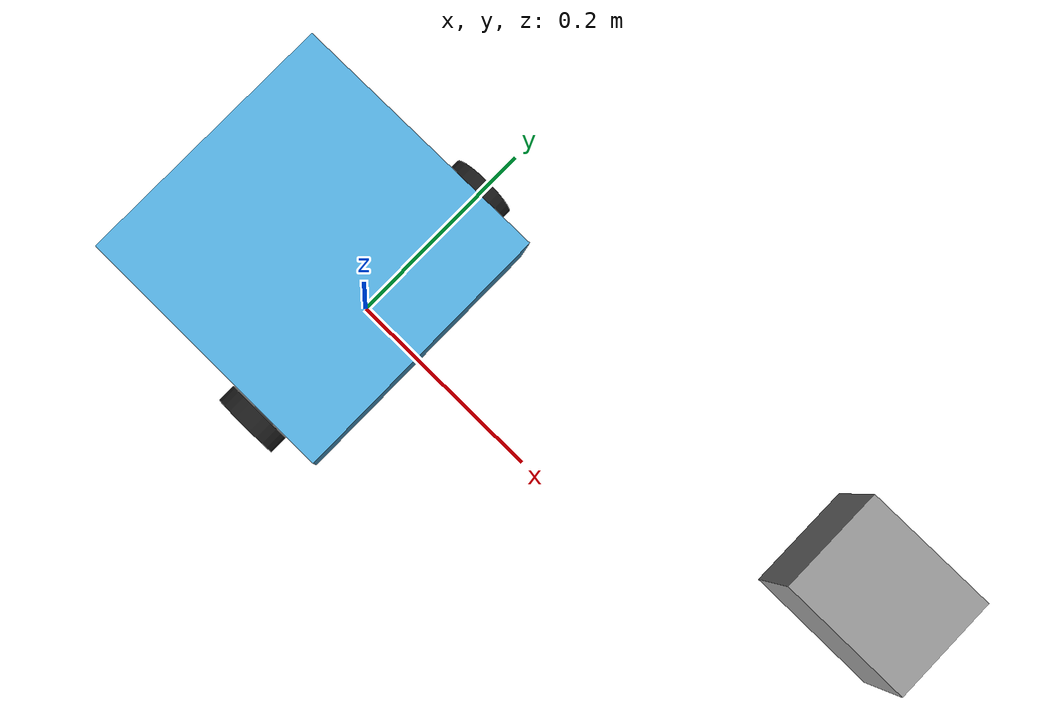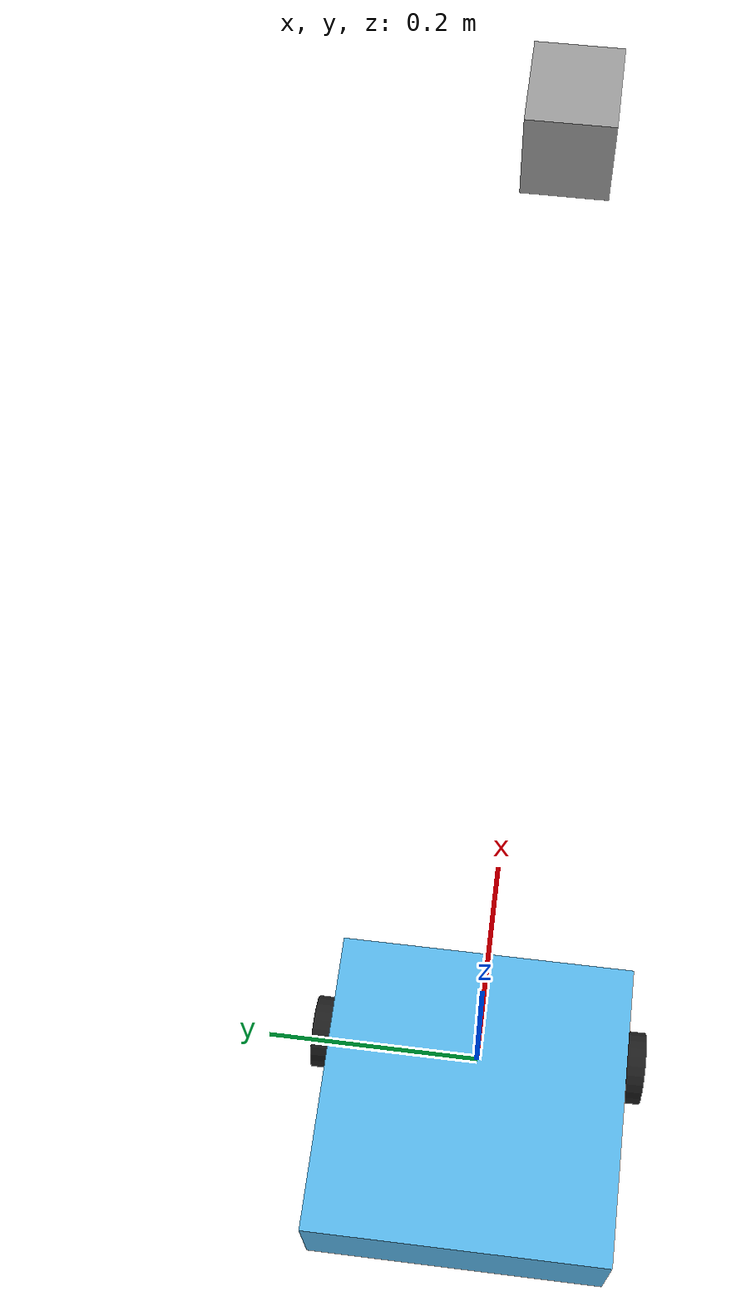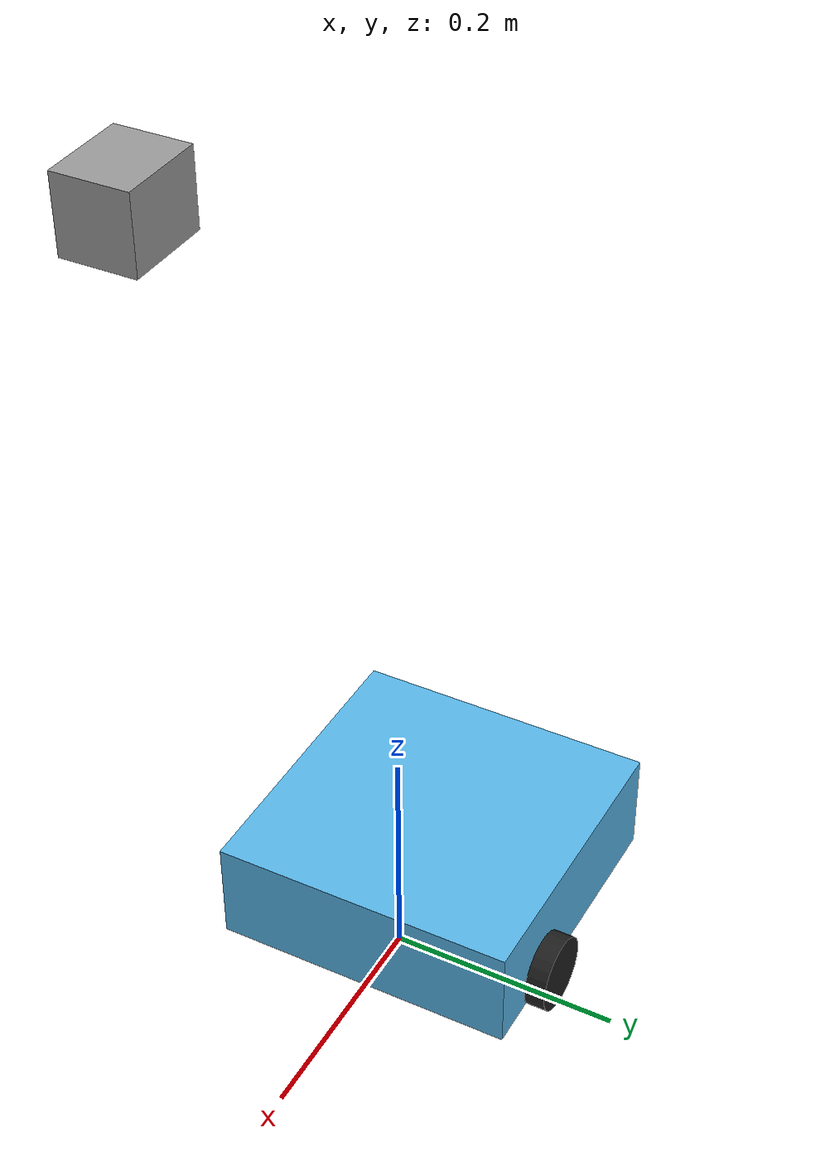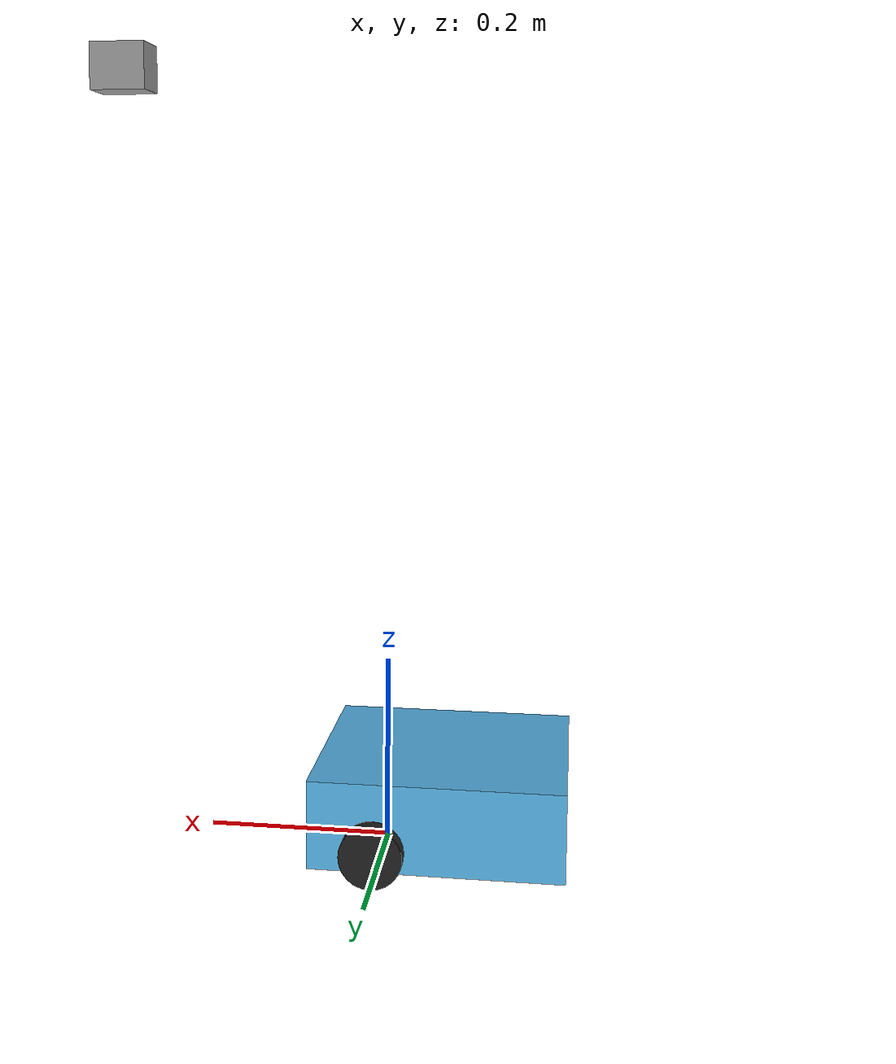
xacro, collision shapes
<?xml version="1.0"?>
<robot name="turtlebot3_waffle_jpc2_visual" xmlns:xacro="http://ros.org/wiki/xacro">

<!-- ====================== PRUEBAS DE CINEMATICA - SI FUNCIONA ===================== -->

<!-- ====================== POTACION D E90 GRADOS EN Y PARA EL LIDAR - DIST.PY ===================== -->

  <xacro:arg name="jpac2_meshes_path" default="file:///home/leyla/Desktop/JPAC2/nexus-ros2/jpac2_ws/src/robot_description/meshes/visual"/>
  <xacro:property name="meshes_path" value="$(arg jpac2_meshes_path)"/>

  <link name="base_footprint"/>
  <joint name="base_joint" type="fixed">
    <parent link="base_footprint"/>
    <child  link="base_link"/>
    <origin xyz="0 0 0.010" rpy="0 0 0"/>
  </joint>

<!-- ============== SIN TAMBALEOS =============== -->

<!-- ============== PERO NO QUIERE HACER SLAM =============== -->

  <link name="base_link">
    <visual>
      <origin xyz="0 0 0.040" rpy="0 0 1.5708"/>
      <geometry>
        <mesh filename="${meshes_path}/base_link.STL"/>
      </geometry>
      <material name="dark"/>
    </visual>
    <collision>
      <origin xyz="-0.064 0 0.047" rpy="0 0 0"/>
      <geometry><box size="0.266 0.266 0.094"/></geometry>
    </collision>
    <inertial>
      <origin xyz="0 0 0" rpy="0 0 0"/>
      <mass value="10.5"/>
      <inertia ixx="0.0087" ixy="0.0" ixz="0.0"
      iyy="0.1" iyz="0.0" izz="0.2"/>
    </inertial>
  </link>

  <joint name="RuedaIzquierda_joint" type="continuous">
    <parent link="base_link"/>
    <child link="RuedaIzquierda_link"/>
    <origin xyz="0.0 0.144 0.023" rpy="-1.57 0 0"/><axis xyz="0 0 1"/>
    <dynamics damping="0.0" friction="0.1"/>
  </joint>

  <link name="RuedaIzquierda_link">
    <visual>
      <origin xyz="0 0 0" rpy="0 0 0"/>
      <geometry><mesh filename="${meshes_path}/RuedaIzquierda_Link.STL"/>
      </geometry>
      <material name="black"/>
    </visual>
    <collision><origin xyz="0 0 0"/><geometry>
    <cylinder length="0.018" radius="0.033"/>
    </geometry></collision>
    <inertial>
    <origin xyz="0 0 0"/>
    <mass value="5.5"/>
    <inertia ixx="1.12e-5" ixy="0" ixz="0" iyy="1.12e-5" iyz="0" izz="2.07e-5"/></inertial>
  </link>

  <joint name="RuedaDerecha_joint" type="continuous">
    <parent link="base_link"/>
    <child link="RuedaDerecha_link"/>
    <origin xyz="0.0 -0.144 0.023" rpy="-1.57 0 0"/><axis xyz="0 0 1"/>
    <dynamics damping="0.0" friction="0.1"/>
  </joint>

  <link name="RuedaDerecha_link">
    <visual>
      <origin xyz="0 0 0" rpy="0 0 0"/>
      <geometry><mesh filename="${meshes_path}/RuedaDerecha_Link.STL"/></geometry>
      <material name="black"/>
    </visual>
    <collision><origin xyz="0 0 0"/>
    <geometry><cylinder length="0.018" radius="0.033"/>
    </geometry></collision>
    <inertial>
    <origin xyz="0 0 0"/>
    <mass value="5.5"/>
    <inertia ixx="1.12e-5" ixy="0" ixz="0" iyy="1.12e-5" iyz="0" izz="2.07e-5"/></inertial>
  </link>

  <joint name="caster_back_right_joint" type="fixed">
    <parent link="base_link"/>
    <child link="caster_back_right_link"/>
    <origin xyz="-0.177 -0.064 -0.004" rpy="-1.57 0 0"/>
  </joint>
  <link name="caster_back_right_link">
    <collision><origin xyz="0 0.001 0"/>
    <geometry><box size="0.030 0.009 0.020"/>
    </geometry></collision>
    <inertial><origin xyz="0 0 0"/>
    <mass value="0.005"/>
    <inertia ixx="1e-3" ixy="0" ixz="0" iyy="1e-3" iyz="0" izz="1e-3"/></inertial>
  </link>

  <joint name="caster_back_left_joint" type="fixed">
    <parent link="base_link"/>
    <child link="caster_back_left_link"/>
    <origin xyz="-0.177 0.064 -0.004" rpy="-1.57 0 0"/>
  </joint>
  <link name="caster_back_left_link">
    <collision><origin xyz="0 0.001 0"/>
    <geometry><box size="0.030 0.009 0.020"/>
    </geometry></collision>
    <inertial><origin xyz="0 0 0"/>
    <mass value="0.005"/>
    <inertia ixx="1e-3" ixy="0" ixz="0" iyy="1e-3" iyz="0" izz="1e-3"/></inertial>
  </link>

  <joint name="imu_joint" type="fixed">
    <parent link="base_link"/>
    <child link="imu_link"/>
    <origin xyz="0.0 0 0.068" rpy="0 0 0"/>
  </joint>
  <link name="imu_link"/>
  <gazebo reference="imu_link">
    <sensor name="tb3_imu" type="imu">
      <always_on>true</always_on>
      <update_rate>200</update_rate>
      <visualize>false</visualize>
      <imu>
        <angular_velocity>
          <x><noise type="gaussian"><mean>0.0</mean><stddev>2e-4</stddev></noise></x>
          <y><noise type="gaussian"><mean>0.0</mean><stddev>2e-4</stddev></noise></y>
          <z><noise type="gaussian"><mean>0.0</mean><stddev>2e-4</stddev></noise></z>
        </angular_velocity>
        <linear_acceleration>
          <x><noise type="gaussian"><mean>0.0</mean><stddev>1.7e-2</stddev></noise></x>
          <y><noise type="gaussian"><mean>0.0</mean><stddev>1.7e-2</stddev></noise></y>
          <z><noise type="gaussian"><mean>0.0</mean><stddev>1.7e-2</stddev></noise></z>
        </linear_acceleration>
      </imu>
      <plugin name="imu_plugin" filename="libgazebo_ros_imu_sensor.so">
        <ros><remapping>~/out:=imu</remapping></ros>
      </plugin>
    </sensor>
  </gazebo>

  <joint name="scan_joint" type="fixed">

    <parent link="base_link"/>
    <child link="base_scan"/>
    <origin xyz="0.29 0 0.83" rpy="0 1.5708 0"/>

  </joint>

  <link name="base_scan">
    <visual>
      <origin xyz="0 0 0"/>
      <geometry><box size="0.05 0.05 0.05"/>
      </geometry><material name="grey"/>
    </visual>
    <collision><origin xyz="0 0 0"/>
    <geometry><box size="0.05 0.05 0.06"/>
    </geometry></collision>
    <inertial><origin xyz="0 0 0"/>
    <mass value="0.01"/>
    <inertia ixx="5e-4" ixy="0" ixz="0" iyy="5e-4" iyz="0" izz="5e-4"/></inertial>
  </link>

  <gazebo reference="base_scan">
    <sensor name="lidar_3d" type="ray">
      <pose>0 0 0 0 0 0</pose>
      <always_on>true</always_on>
      <visualize>false</visualize>
      <update_rate>10</update_rate>
      <ray>
        <scan>
          <horizontal><samples>1024</samples>
          <resolution>1</resolution>
          <min_angle>-3.14159</min_angle>
          <max_angle> 3.14159</max_angle></horizontal>
          <vertical><samples>32</samples>
          <resolution>1</resolution>
          <min_angle>0.0</min_angle>
          <max_angle>1.57079632679</max_angle></vertical>
        </scan>
        <range><min>0.50</min>
        <max>3.0</max>
        <resolution>0.01</resolution></range>
        <noise><type>gaussian</type>
        <mean>0.0</mean>
        <stddev>0.01</stddev></noise>
      </ray>
      <plugin name="lidar_3d_points" filename="libgazebo_ros_ray_sensor.so">
        <ros><remapping>~/out:=points2</remapping></ros>
        <output_type>sensor_msgs/PointCloud2</output_type>
        <frame_name>base_scan</frame_name>
      </plugin>
    </sensor>
  </gazebo>

  <gazebo>
    <plugin name="diff_drive" filename="libgazebo_ros_diff_drive.so">

      <ros><remapping>cmd_vel:=cmd_vel</remapping>
      <remapping>odom:=odom</remapping></ros>
      <update_rate>30</update_rate>

      <left_joint>RuedaIzquierda_joint</left_joint>
      <right_joint>RuedaDerecha_joint</right_joint>

      <wheel_separation>0.287</wheel_separation>
      <wheel_diameter>0.066</wheel_diameter>

      <publish_odom>true</publish_odom>
      <publish_odom_tf>true</publish_odom_tf>
      <publish_wheel_tf>false</publish_wheel_tf>

      <odometry_frame>odom</odometry_frame>
      <robot_base_frame>base_footprint</robot_base_frame>
      <max_wheel_torque>1.0</max_wheel_torque>
      <max_wheel_acceleration>1.0</max_wheel_acceleration>

    </plugin>
  </gazebo>

  <gazebo>
    <plugin name="joint_state_pub" filename="libgazebo_ros_joint_state_publisher.so">

      <ros><remapping>~/out:=joint_states</remapping></ros>

      <update_rate>30</update_rate>
      <joint_name>RuedaIzquierda_joint</joint_name>
      <joint_name>RuedaDerecha_joint</joint_name>

    </plugin>
  </gazebo>

</robot>
